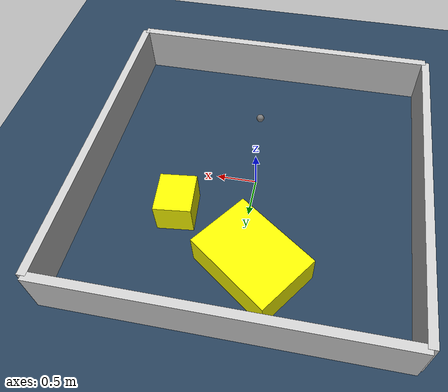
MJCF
<?xml version="1.0" ?>
<mujoco model="generated_environment">
  <option timestep="0.01" integrator="RK4" cone="elliptic"/>
  <default>
    <geom density="1"/>
  </default>
  <asset>
    <texture builtin="gradient" height="3072" rgb1="0.3 0.5 0.7" rgb2="0 0 0" type="skybox" width="512"/>
    <texture builtin="checker" height="300" mark="edge" markrgb="0.8 0.8 0.8" name="groundplane" rgb1="0.2 0.3 0.4" rgb2="0.1 0.2 0.3" type="2d" width="300"/>
    <material name="groundplane" reflectance="0.2" texrepeat="5 5" texture="groundplane" texuniform="true"/>
    <material name="robot" rgba="0.0 1.0 0.0 1"/>
  </asset>
  <worldbody>
    <light dir="0 0 -1" directional="true" pos="0 0 1.5"/>
    <geom condim="4" friction="1.0 0.005 0.001" material="groundplane" name="floor" size="0 0 0.05" type="plane"/>
    <body name="walls">
      <geom name="wall_1" condim="4" pos="-2.0 0.0 0.3" rgba="0.800000011920929 0.800000011920929 0.800000011920929 1.0" size="0.05 2.0 0.3" type="box"/>
      <geom name="wall_2" condim="4" pos="2.0 0.0 0.3" rgba="0.800000011920929 0.800000011920929 0.800000011920929 1.0" size="0.05 2.0 0.3" type="box"/>
      <geom name="wall_3" condim="4" pos="0.0 -2.0 0.3" rgba="0.800000011920929 0.800000011920929 0.800000011920929 1.0" size="2.0 0.05 0.3" type="box"/>
      <geom name="wall_4" condim="4" pos="0.0 2.0 0.3" rgba="0.800000011920929 0.800000011920929 0.800000011920929 1.0" size="2.0 0.05 0.3" type="box"/>
    </body>
    <body name="robot">
      <joint name="joint_x" type="slide" pos="0 0 0" axis="1 0 0"/>
      <joint name="joint_y" type="slide" pos="0 0 0" axis="0 1 0"/>
      <geom name="robot" type="sphere" pos="0.1146173506024597 -0.9301602572636848 0.2" size="0.05" mass="5." friction="1.0 0.005 0.0001" condim="4"/>
      <site name="sensor_ball"/>
    </body>
    <body name="obstacle_1_movable">
      <geom name="obstacle_1_movable" condim="4" pos="-0.1767401153353072 1.1949057559152378 0.2" euler="0 0 234.6114373456849" friction="1.0 0.005 0.001" rgba="1 1 0 1" size="0.39282900959660705 0.5564383459717787 0.2" type="box" mass="0.1"/>
      <joint type="free"/>
    </body>
    <body name="obstacle_2_movable">
      <geom name="obstacle_2_movable" condim="4" pos="0.8412566897563263 0.6098699156716654 0.2" euler="0 0 276.1359847174015" friction="1.0 0.005 0.001" rgba="1 1 0 1" size="0.25341974010719837 0.21994448550064627 0.2" type="box" mass="0.1"/>
      <joint type="free"/>
    </body>
  </worldbody>
  <actuator>
    <motor name="actuator_x" joint="joint_x" gear="1" ctrlrange="-1 1"/>
    <motor name="actuator_y" joint="joint_y" gear="1" ctrlrange="-1 1"/>
  </actuator>
</mujoco>
